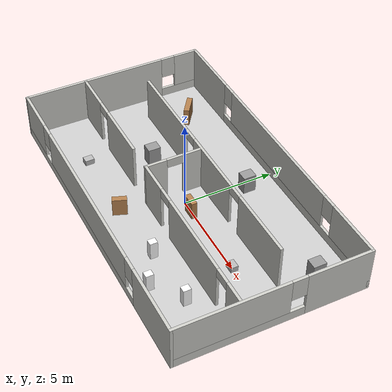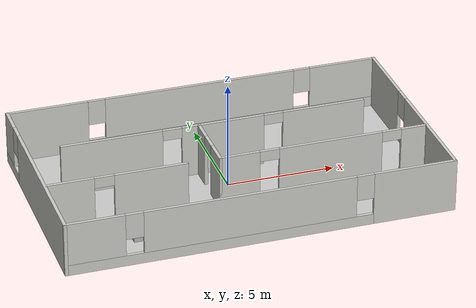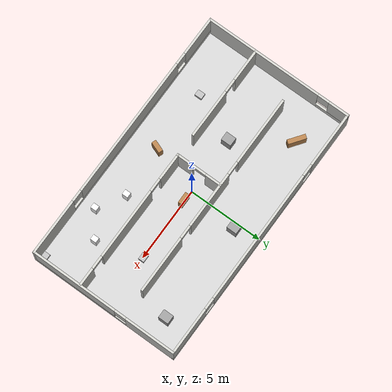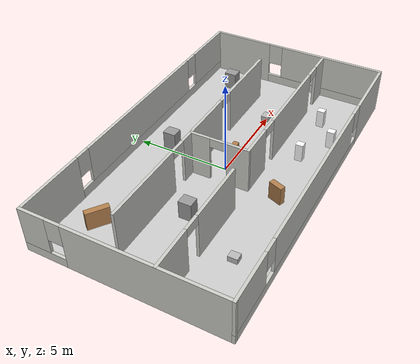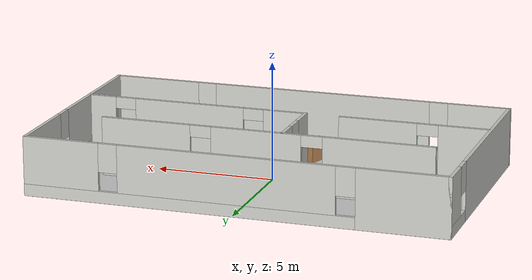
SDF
<?xml version="1.0" ?>
<sdf version="1.5">
  <world name="default">
    <!-- A global light source -->
    <include>
      <uri>model://sun</uri>
    </include>
    <!-- the detected building -->
    <include>
      <uri>model://ground_demap</uri>
    </include>
    <include>
      <uri>model://detectMap</uri>
    </include>
  </world>
</sdf>

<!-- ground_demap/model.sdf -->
<sdf version="1.4">
   <model name="ground_demap">
      <static>true</static>
      <link name="link">
         <collision name="collision">
            <geometry>
               <plane>
                  <normal>0 0 1</normal>
                  <size>17.6 10.15</size>
               </plane>
            </geometry>
            <surface>
               <friction>
                  <ode>
                     <mu>100</mu>
                     <mu2>50</mu2>
                  </ode>
               </friction>
            </surface>
         </collision>

         <visual name="visual">
            <cast_shadows>false</cast_shadows>
            <geometry>
               <plane>
                  <normal>0 0 1</normal>
                  <size>17.6 10.15</size>
               </plane>
            </geometry>
            <material>
               <script>
                  <uri>model://ground_demap/materials/scripts</uri>
                  <uri>model://ground_demap/materials/textures/</uri>
                  <name>MyGroundPlane/Image</name>
               </script>
            </material>
         </visual>
      </link>
   </model>
</sdf>
